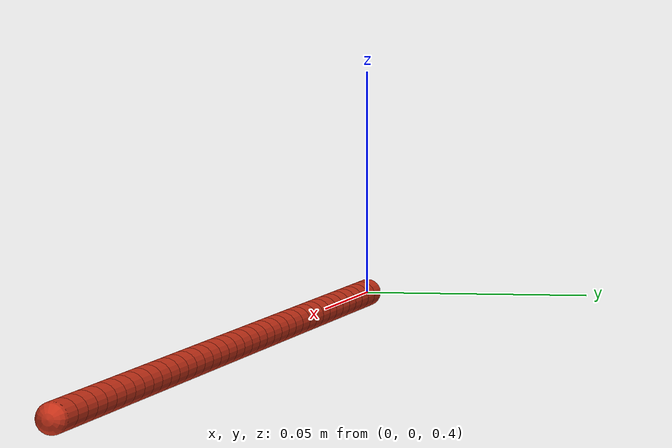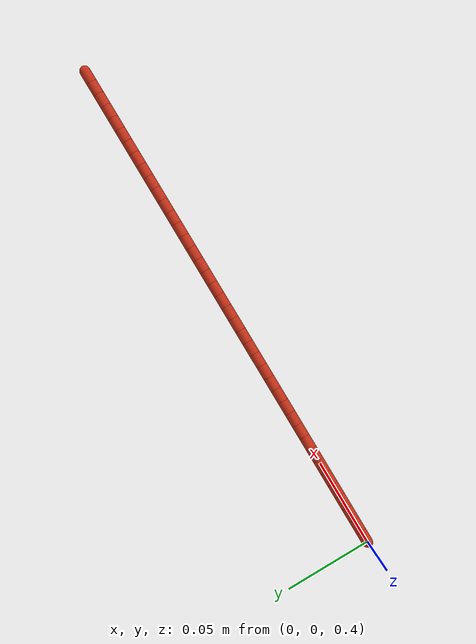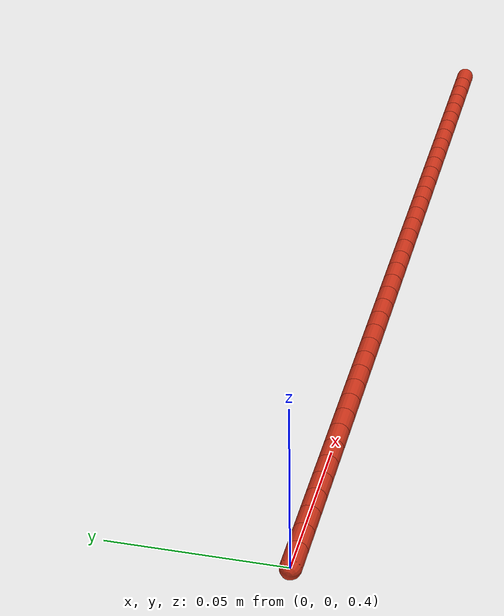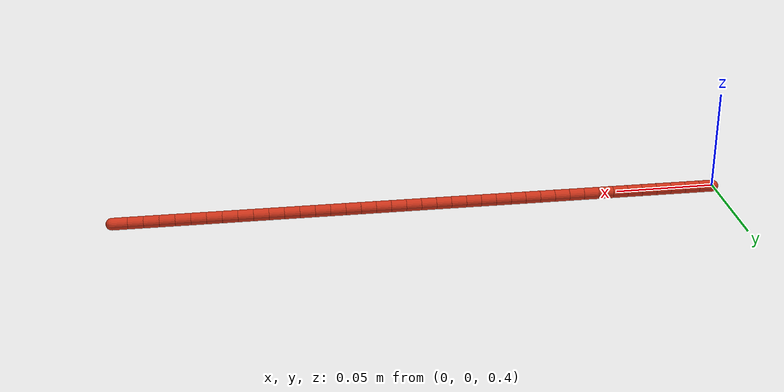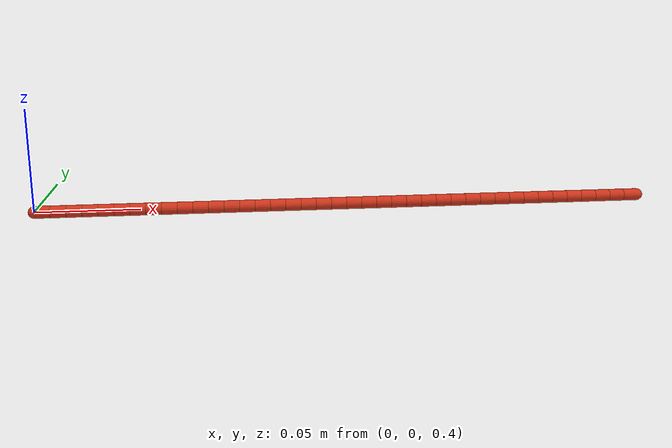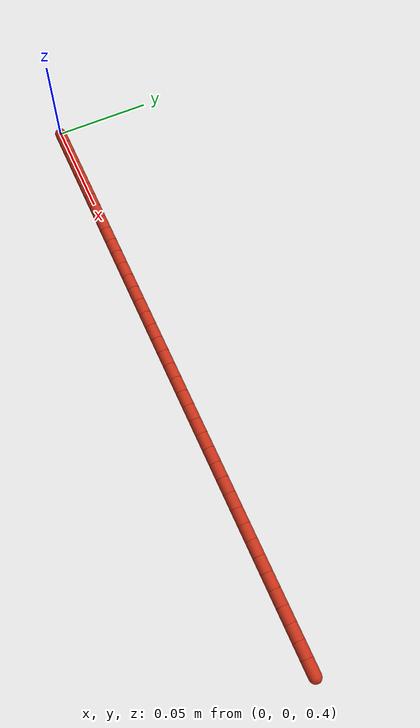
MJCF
<mujoco model="Cable">
  <compiler angle="radian" autolimits="true"/>
  <size memory="2M"/>
  <statistic meansize="0.0163415" extent="0.40675" center="0.15 0 0.596625"/>
  <custom>
    <text name="composite_" data="rope_"/>
  </custom>
  <worldbody>
    <body name="cable0" pos="0 0 0.4">
      <joint type="free"/>
      <body name="B_first">
        <geom name="G0" size="0.003 0.00375" pos="0.00375 0 0" quat="0.707107 0 -0.707107 0" type="capsule" condim="1" rgba="0.8 0.2 0.1 1"/>
        <site name="S_first" pos="0 0 0" group="3"/>
        <body name="B_1" pos="0.0075 0 0">
          <joint name="J_1" pos="0 0 0" type="ball" group="3" stiffness="0.02" damping="0.03"/>
          <geom name="G1" size="0.003 0.00375" pos="0.00375 0 0" quat="0.707107 0 -0.707107 0" type="capsule" condim="1" rgba="0.8 0.2 0.1 1"/>
          <body name="B_2" pos="0.0075 0 0">
            <joint name="J_2" pos="0 0 0" type="ball" group="3" stiffness="0.02" damping="0.03"/>
            <geom name="G2" size="0.003 0.00375" pos="0.00375 0 0" quat="0.707107 0 -0.707107 0" type="capsule" condim="1" rgba="0.8 0.2 0.1 1"/>
            <body name="B_3" pos="0.0075 0 0">
              <joint name="J_3" pos="0 0 0" type="ball" group="3" stiffness="0.02" damping="0.03"/>
              <geom name="G3" size="0.003 0.00375" pos="0.00375 0 0" quat="0.707107 0 -0.707107 0" type="capsule" condim="1" rgba="0.8 0.2 0.1 1"/>
              <body name="B_4" pos="0.0075 0 0">
                <joint name="J_4" pos="0 0 0" type="ball" group="3" stiffness="0.02" damping="0.03"/>
                <geom name="G4" size="0.003 0.00375" pos="0.00375 0 0" quat="0.707107 0 -0.707107 0" type="capsule" condim="1" rgba="0.8 0.2 0.1 1"/>
                <body name="B_5" pos="0.0075 0 0">
                  <joint name="J_5" pos="0 0 0" type="ball" group="3" stiffness="0.02" damping="0.03"/>
                  <geom name="G5" size="0.003 0.00375" pos="0.00375 0 0" quat="0.707107 0 -0.707107 0" type="capsule" condim="1" rgba="0.8 0.2 0.1 1"/>
                  <body name="B_6" pos="0.0075 0 0">
                    <joint name="J_6" pos="0 0 0" type="ball" group="3" stiffness="0.02" damping="0.03"/>
                    <geom name="G6" size="0.003 0.00375" pos="0.00375 0 0" quat="0.707107 0 -0.707107 0" type="capsule" condim="1" rgba="0.8 0.2 0.1 1"/>
                    <body name="B_7" pos="0.0075 0 0">
                      <joint name="J_7" pos="0 0 0" type="ball" group="3" stiffness="0.02" damping="0.03"/>
                      <geom name="G7" size="0.003 0.00375" pos="0.00375 0 0" quat="0.707107 0 -0.707107 0" type="capsule" condim="1" rgba="0.8 0.2 0.1 1"/>
                      <body name="B_8" pos="0.0075 0 0">
                        <joint name="J_8" pos="0 0 0" type="ball" group="3" stiffness="0.02" damping="0.03"/>
                        <geom name="G8" size="0.003 0.00375" pos="0.00375 0 0" quat="0.707107 0 -0.707107 0" type="capsule" condim="1" rgba="0.8 0.2 0.1 1"/>
                        <body name="B_9" pos="0.0075 0 0">
                          <joint name="J_9" pos="0 0 0" type="ball" group="3" stiffness="0.02" damping="0.03"/>
                          <geom name="G9" size="0.003 0.00375" pos="0.00375 0 0" quat="0.707107 0 -0.707107 0" type="capsule" condim="1" rgba="0.8 0.2 0.1 1"/>
                          <body name="B_10" pos="0.0075 0 0">
                            <joint name="J_10" pos="0 0 0" type="ball" group="3" stiffness="0.02" damping="0.03"/>
                            <geom name="G10" size="0.003 0.00375" pos="0.00375 0 0" quat="0.707107 0 -0.707107 0" type="capsule" condim="1" rgba="0.8 0.2 0.1 1"/>
                            <body name="B_11" pos="0.0075 0 0">
                              <joint name="J_11" pos="0 0 0" type="ball" group="3" stiffness="0.02" damping="0.03"/>
                              <geom name="G11" size="0.003 0.00375" pos="0.00375 0 0" quat="0.707107 0 -0.707107 0" type="capsule" condim="1" rgba="0.8 0.2 0.1 1"/>
                              <body name="B_12" pos="0.00749999 0 0">
                                <joint name="J_12" pos="0 0 0" type="ball" group="3" stiffness="0.02" damping="0.03"/>
                                <geom name="G12" size="0.003 0.00375" pos="0.00375 0 0" quat="0.707107 0 -0.707107 0" type="capsule" condim="1" rgba="0.8 0.2 0.1 1"/>
                                <body name="B_13" pos="0.0075 0 0">
                                  <joint name="J_13" pos="0 0 0" type="ball" group="3" stiffness="0.02" damping="0.03"/>
                                  <geom name="G13" size="0.003 0.00375" pos="0.00375 0 0" quat="0.707107 0 -0.707107 0" type="capsule" condim="1" rgba="0.8 0.2 0.1 1"/>
                                  <body name="B_14" pos="0.0075 0 0">
                                    <joint name="J_14" pos="0 0 0" type="ball" group="3" stiffness="0.02" damping="0.03"/>
                                    <geom name="G14" size="0.003 0.00375" pos="0.00375 0 0" quat="0.707107 0 -0.707107 0" type="capsule" condim="1" rgba="0.8 0.2 0.1 1"/>
                                    <body name="B_15" pos="0.0075 0 0">
                                      <joint name="J_15" pos="0 0 0" type="ball" group="3" stiffness="0.02" damping="0.03"/>
                                      <geom name="G15" size="0.003 0.00375" pos="0.00375 0 0" quat="0.707107 0 -0.707107 0" type="capsule" condim="1" rgba="0.8 0.2 0.1 1"/>
                                      <body name="B_16" pos="0.0075 0 0">
                                        <joint name="J_16" pos="0 0 0" type="ball" group="3" stiffness="0.02" damping="0.03"/>
                                        <geom name="G16" size="0.003 0.00375" pos="0.00375 0 0" quat="0.707107 0 -0.707107 0" type="capsule" condim="1" rgba="0.8 0.2 0.1 1"/>
                                        <body name="B_17" pos="0.00750001 0 0">
                                          <joint name="J_17" pos="0 0 0" type="ball" group="3" stiffness="0.02" damping="0.03"/>
                                          <geom name="G17" size="0.003 0.00375" pos="0.00375 0 0" quat="0.707107 0 -0.707107 0" type="capsule" condim="1" rgba="0.8 0.2 0.1 1"/>
                                          <body name="B_18" pos="0.00749999 0 0">
                                            <joint name="J_18" pos="0 0 0" type="ball" group="3" stiffness="0.02" damping="0.03"/>
                                            <geom name="G18" size="0.003 0.00375" pos="0.00375 0 0" quat="0.707107 0 -0.707107 0" type="capsule" condim="1" rgba="0.8 0.2 0.1 1"/>
                                            <body name="B_19" pos="0.00750001 0 0">
                                              <joint name="J_19" pos="0 0 0" type="ball" group="3" stiffness="0.02" damping="0.03"/>
                                              <geom name="G19" size="0.003 0.00375" pos="0.00375 0 0" quat="0.707107 0 -0.707107 0" type="capsule" condim="1" rgba="0.8 0.2 0.1 1"/>
                                              <body name="B_20" pos="0.00749999 0 0">
                                                <joint name="J_20" pos="0 0 0" type="ball" group="3" stiffness="0.02" damping="0.03"/>
                                                <geom name="G20" size="0.003 0.00375" pos="0.00375 0 0" quat="0.707107 0 -0.707107 0" type="capsule" condim="1" rgba="0.8 0.2 0.1 1"/>
                                                <body name="B_21" pos="0.00750001 0 0">
                                                  <joint name="J_21" pos="0 0 0" type="ball" group="3" stiffness="0.02" damping="0.03"/>
                                                  <geom name="G21" size="0.003 0.00375" pos="0.00375 0 0" quat="0.707107 0 -0.707107 0" type="capsule" condim="1" rgba="0.8 0.2 0.1 1"/>
                                                  <body name="B_22" pos="0.00749999 0 0">
                                                    <joint name="J_22" pos="0 0 0" type="ball" group="3" stiffness="0.02" damping="0.03"/>
                                                    <geom name="G22" size="0.003 0.00375" pos="0.00375 0 0" quat="0.707107 0 -0.707107 0" type="capsule" condim="1" rgba="0.8 0.2 0.1 1"/>
                                                    <body name="B_23" pos="0.00750001 0 0">
                                                      <joint name="J_23" pos="0 0 0" type="ball" group="3" stiffness="0.02" damping="0.03"/>
                                                      <geom name="G23" size="0.003 0.00375" pos="0.00375 0 0" quat="0.707107 0 -0.707107 0" type="capsule" condim="1" rgba="0.8 0.2 0.1 1"/>
                                                      <body name="B_24" pos="0.00749999 0 0">
                                                        <joint name="J_24" pos="0 0 0" type="ball" group="3" stiffness="0.02" damping="0.03"/>
                                                        <geom name="G24" size="0.003 0.00375" pos="0.00375 0 0" quat="0.707107 0 -0.707107 0" type="capsule" condim="1" rgba="0.8 0.2 0.1 1"/>
                                                        <body name="B_25" pos="0.00749999 0 0">
                                                          <joint name="J_25" pos="0 0 0" type="ball" group="3" stiffness="0.02" damping="0.03"/>
                                                          <geom name="G25" size="0.003 0.00375" pos="0.00375 0 0" quat="0.707107 0 -0.707107 0" type="capsule" condim="1" rgba="0.8 0.2 0.1 1"/>
                                                          <body name="B_26" pos="0.00750001 0 0">
                                                            <joint name="J_26" pos="0 0 0" type="ball" group="3" stiffness="0.02" damping="0.03"/>
                                                            <geom name="G26" size="0.003 0.00375" pos="0.00375 0 0" quat="0.707107 0 -0.707107 0" type="capsule" condim="1" rgba="0.8 0.2 0.1 1"/>
                                                            <body name="B_27" pos="0.00749999 0 0">
                                                              <joint name="J_27" pos="0 0 0" type="ball" group="3" stiffness="0.02" damping="0.03"/>
                                                              <geom name="G27" size="0.003 0.00375" pos="0.00375 0 0" quat="0.707107 0 -0.707107 0" type="capsule" condim="1" rgba="0.8 0.2 0.1 1"/>
                                                              <body name="B_28" pos="0.00750001 0 0">
                                                                <joint name="J_28" pos="0 0 0" type="ball" group="3" stiffness="0.02" damping="0.03"/>
                                                                <geom name="G28" size="0.003 0.00375" pos="0.00375 0 0" quat="0.707107 0 -0.707107 0" type="capsule" condim="1" rgba="0.8 0.2 0.1 1"/>
                                                                <body name="B_29" pos="0.00749999 0 0">
                                                                  <joint name="J_29" pos="0 0 0" type="ball" group="3" stiffness="0.02" damping="0.03"/>
                                                                  <geom name="G29" size="0.003 0.00375" pos="0.00375 0 0" quat="0.707107 0 -0.707107 0" type="capsule" condim="1" rgba="0.8 0.2 0.1 1"/>
                                                                  <body name="B_30" pos="0.00750001 0 0">
                                                                    <joint name="J_30" pos="0 0 0" type="ball" group="3" stiffness="0.02" damping="0.03"/>
                                                                    <geom name="G30" size="0.003 0.00375" pos="0.00375 0 0" quat="0.707107 0 -0.707107 0" type="capsule" condim="1" rgba="0.8 0.2 0.1 1"/>
                                                                    <body name="B_31" pos="0.00749999 0 0">
                                                                      <joint name="J_31" pos="0 0 0" type="ball" group="3" stiffness="0.02" damping="0.03"/>
                                                                      <geom name="G31" size="0.003 0.00375" pos="0.00375 0 0" quat="0.707107 0 -0.707107 0" type="capsule" condim="1" rgba="0.8 0.2 0.1 1"/>
                                                                      <body name="B_32" pos="0.00750001 0 0">
                                                                        <joint name="J_32" pos="0 0 0" type="ball" group="3" stiffness="0.02" damping="0.03"/>
                                                                        <geom name="G32" size="0.003 0.00375" pos="0.00375 0 0" quat="0.707107 0 -0.707107 0" type="capsule" condim="1" rgba="0.8 0.2 0.1 1"/>
                                                                        <body name="B_33" pos="0.00749999 0 0">
                                                                          <joint name="J_33" pos="0 0 0" type="ball" group="3" stiffness="0.02" damping="0.03"/>
                                                                          <geom name="G33" size="0.003 0.00375" pos="0.00375 0 0" quat="0.707107 0 -0.707107 0" type="capsule" condim="1" rgba="0.8 0.2 0.1 1"/>
                                                                          <body name="B_34" pos="0.00749999 0 0">
                                                                            <joint name="J_34" pos="0 0 0" type="ball" group="3" stiffness="0.02" damping="0.03"/>
                                                                            <geom name="G34" size="0.003 0.00375" pos="0.00375 0 0" quat="0.707107 0 -0.707107 0" type="capsule" condim="1" rgba="0.8 0.2 0.1 1"/>
                                                                            <body name="B_35" pos="0.00750002 0 0">
                                                                              <joint name="J_35" pos="0 0 0" type="ball" group="3" stiffness="0.02" damping="0.03"/>
                                                                              <geom name="G35" size="0.003 0.00375001" pos="0.00375001 0 0" quat="0.707107 0 -0.707107 0" type="capsule" condim="1" rgba="0.8 0.2 0.1 1"/>
                                                                              <body name="B_36" pos="0.00749999 0 0">
                                                                                <joint name="J_36" pos="0 0 0" type="ball" group="3" stiffness="0.02" damping="0.03"/>
                                                                                <geom name="G36" size="0.003 0.00375" pos="0.00375 0 0" quat="0.707107 0 -0.707107 0" type="capsule" condim="1" rgba="0.8 0.2 0.1 1"/>
                                                                                <body name="B_37" pos="0.00749999 0 0">
                                                                                  <joint name="J_37" pos="0 0 0" type="ball" group="3" stiffness="0.02" damping="0.03"/>
                                                                                  <geom name="G37" size="0.003 0.00375" pos="0.00375 0 0" quat="0.707107 0 -0.707107 0" type="capsule" condim="1" rgba="0.8 0.2 0.1 1"/>
                                                                                  <body name="B_38" pos="0.00749999 0 0">
                                                                                    <joint name="J_38" pos="0 0 0" type="ball" group="3" stiffness="0.02" damping="0.03"/>
                                                                                    <geom name="G38" size="0.003 0.00375" pos="0.00375 0 0" quat="0.707107 0 -0.707107 0" type="capsule" condim="1" rgba="0.8 0.2 0.1 1"/>
                                                                                    <body name="B_last" pos="0.00750002 0 0">
                                                                                      <joint name="J_last" pos="0 0 0" type="ball" group="3" stiffness="0.02" damping="0.03"/>
                                                                                      <geom name="G39" size="0.003 0.00375001" pos="0.00375001 0 0" quat="0.707107 0 -0.707107 0" type="capsule" condim="1" rgba="0.8 0.2 0.1 1"/>
                                                                                      <site name="S_last" pos="0.00750002 0 0" group="3"/>
                                                                                    </body>
                                                                                  </body>
                                                                                </body>
                                                                              </body>
                                                                            </body>
                                                                          </body>
                                                                        </body>
                                                                      </body>
                                                                    </body>
                                                                  </body>
                                                                </body>
                                                              </body>
                                                            </body>
                                                          </body>
                                                        </body>
                                                      </body>
                                                    </body>
                                                  </body>
                                                </body>
                                              </body>
                                            </body>
                                          </body>
                                        </body>
                                      </body>
                                    </body>
                                  </body>
                                </body>
                              </body>
                            </body>
                          </body>
                        </body>
                      </body>
                    </body>
                  </body>
                </body>
              </body>
            </body>
          </body>
        </body>
      </body>
    </body>
  </worldbody>
  <contact>
    <exclude body1="B_first" body2="B_1"/>
    <exclude body1="B_1" body2="B_2"/>
    <exclude body1="B_2" body2="B_3"/>
    <exclude body1="B_3" body2="B_4"/>
    <exclude body1="B_4" body2="B_5"/>
    <exclude body1="B_5" body2="B_6"/>
    <exclude body1="B_6" body2="B_7"/>
    <exclude body1="B_7" body2="B_8"/>
    <exclude body1="B_8" body2="B_9"/>
    <exclude body1="B_9" body2="B_10"/>
    <exclude body1="B_10" body2="B_11"/>
    <exclude body1="B_11" body2="B_12"/>
    <exclude body1="B_12" body2="B_13"/>
    <exclude body1="B_13" body2="B_14"/>
    <exclude body1="B_14" body2="B_15"/>
    <exclude body1="B_15" body2="B_16"/>
    <exclude body1="B_16" body2="B_17"/>
    <exclude body1="B_17" body2="B_18"/>
    <exclude body1="B_18" body2="B_19"/>
    <exclude body1="B_19" body2="B_20"/>
    <exclude body1="B_20" body2="B_21"/>
    <exclude body1="B_21" body2="B_22"/>
    <exclude body1="B_22" body2="B_23"/>
    <exclude body1="B_23" body2="B_24"/>
    <exclude body1="B_24" body2="B_25"/>
    <exclude body1="B_25" body2="B_26"/>
    <exclude body1="B_26" body2="B_27"/>
    <exclude body1="B_27" body2="B_28"/>
    <exclude body1="B_28" body2="B_29"/>
    <exclude body1="B_29" body2="B_30"/>
    <exclude body1="B_30" body2="B_31"/>
    <exclude body1="B_31" body2="B_32"/>
    <exclude body1="B_32" body2="B_33"/>
    <exclude body1="B_33" body2="B_34"/>
    <exclude body1="B_34" body2="B_35"/>
    <exclude body1="B_35" body2="B_36"/>
    <exclude body1="B_36" body2="B_37"/>
    <exclude body1="B_37" body2="B_38"/>
    <exclude body1="B_38" body2="B_last"/>
  </contact>
</mujoco>
